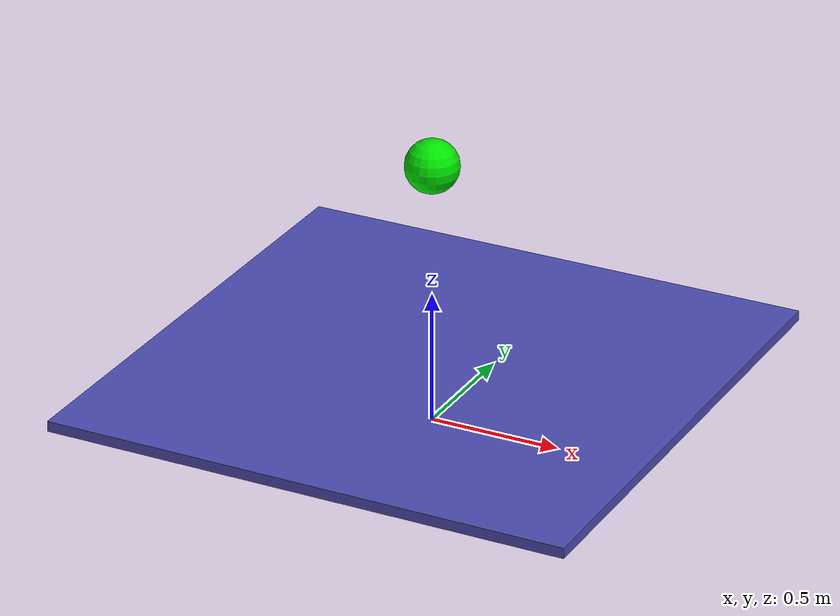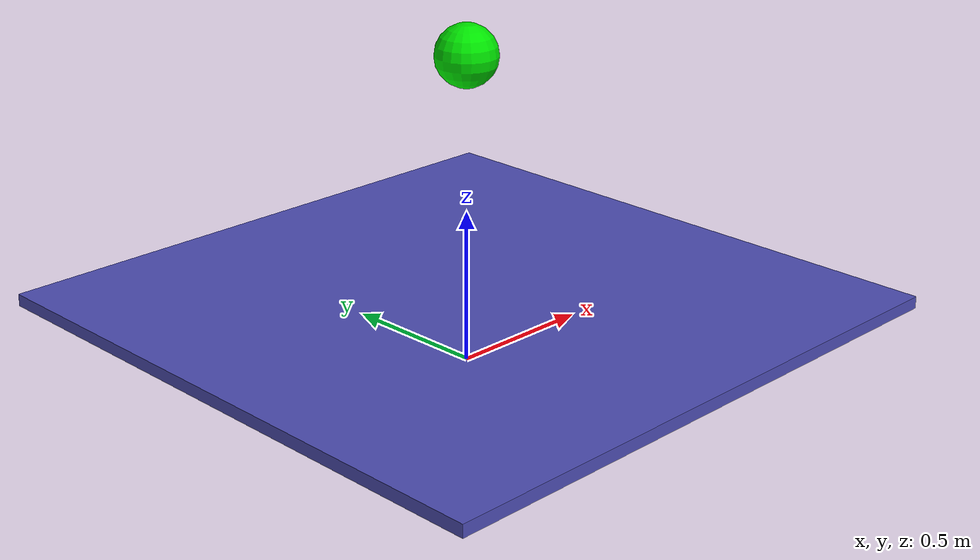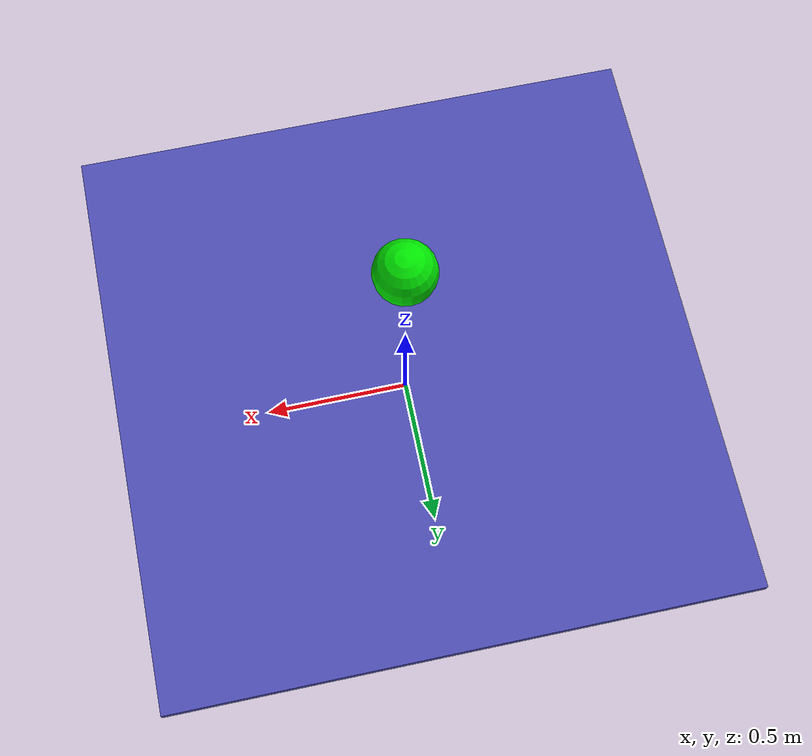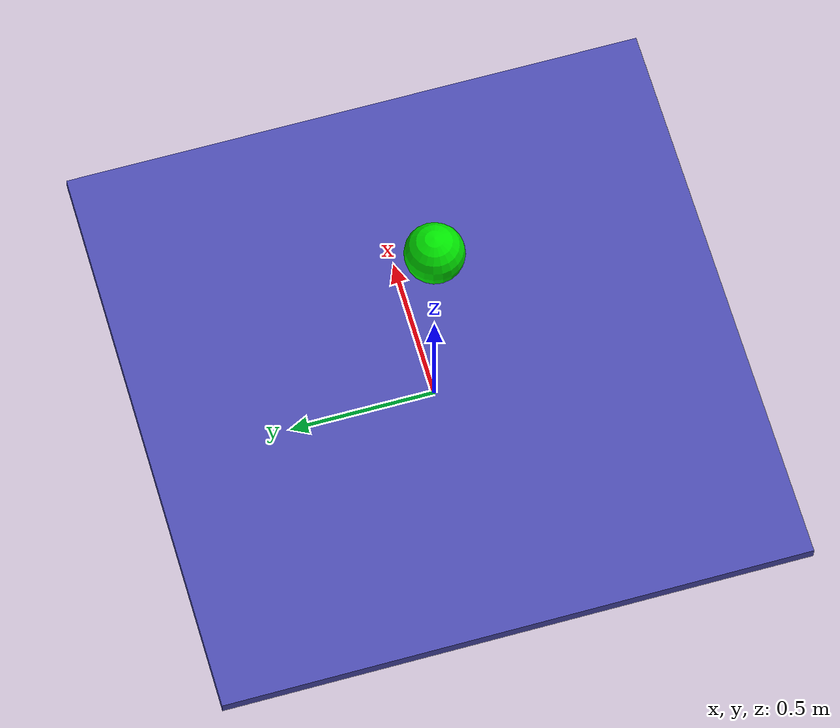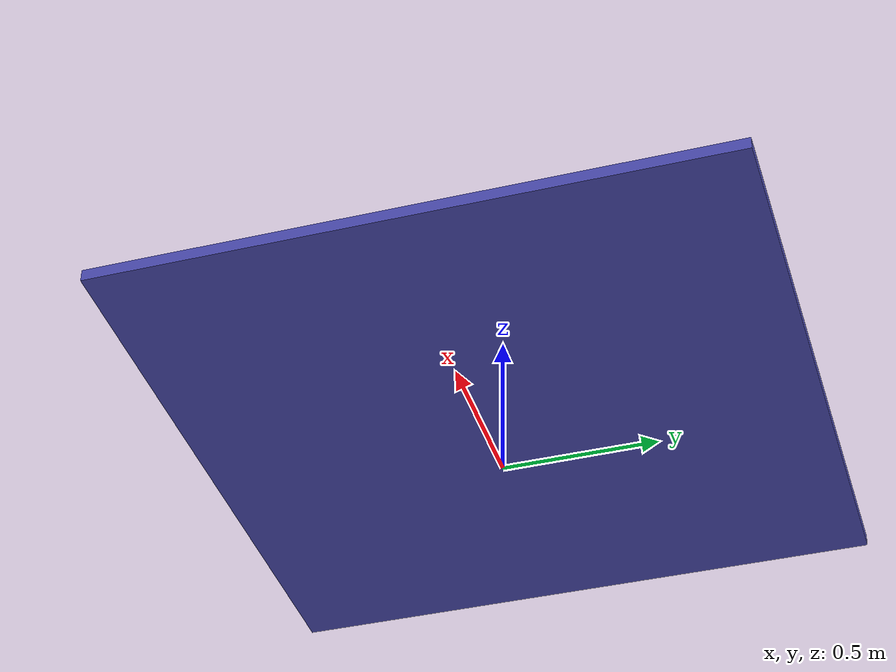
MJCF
<mujoco>
	<worldbody>
        <light diffuse=".5 .5 .5" pos="0 0 3" dir="0 0 -1"/>

		 <!-- Base -->
		<body name="base" pos="0 0 0">
			<!-- Pitch joint -->
			<joint name="pitch" type="hinge" axis="1 0 0" limited="true" range="-15 15"/>

			<!-- Roll joint -->
			<joint name="roll" type="hinge" axis="0 1 0" limited="true" range="-15 15"/>

			<!-- The platform -->
			<body name="platform" pos="0 0 0.2" euler="0 0 0">
				<geom name="plate" type="box" size="1 1 0.02" rgba="0.3 0.3 0.7 1"/>
			</body>
		</body>

		<body name="ball" pos="0 0 1">
			<joint type="free"/>
			<geom type="sphere" size=".1 .1 .1" rgba="0 .9 0 1"/>
		</body>
	</worldbody>

	<actuator>
		<position name="pitch_motor" joint="pitch" kp="5000" kv="1000"/>
  		<position name="roll_motor"  joint="roll" kp="5000" kv="1000"/>
  	</actuator>

	<sensor>
		<jointpos name="plat_rx" joint="pitch"/>
		<jointpos name="plat_ry" joint="roll"/>
	</sensor>
</mujoco>
